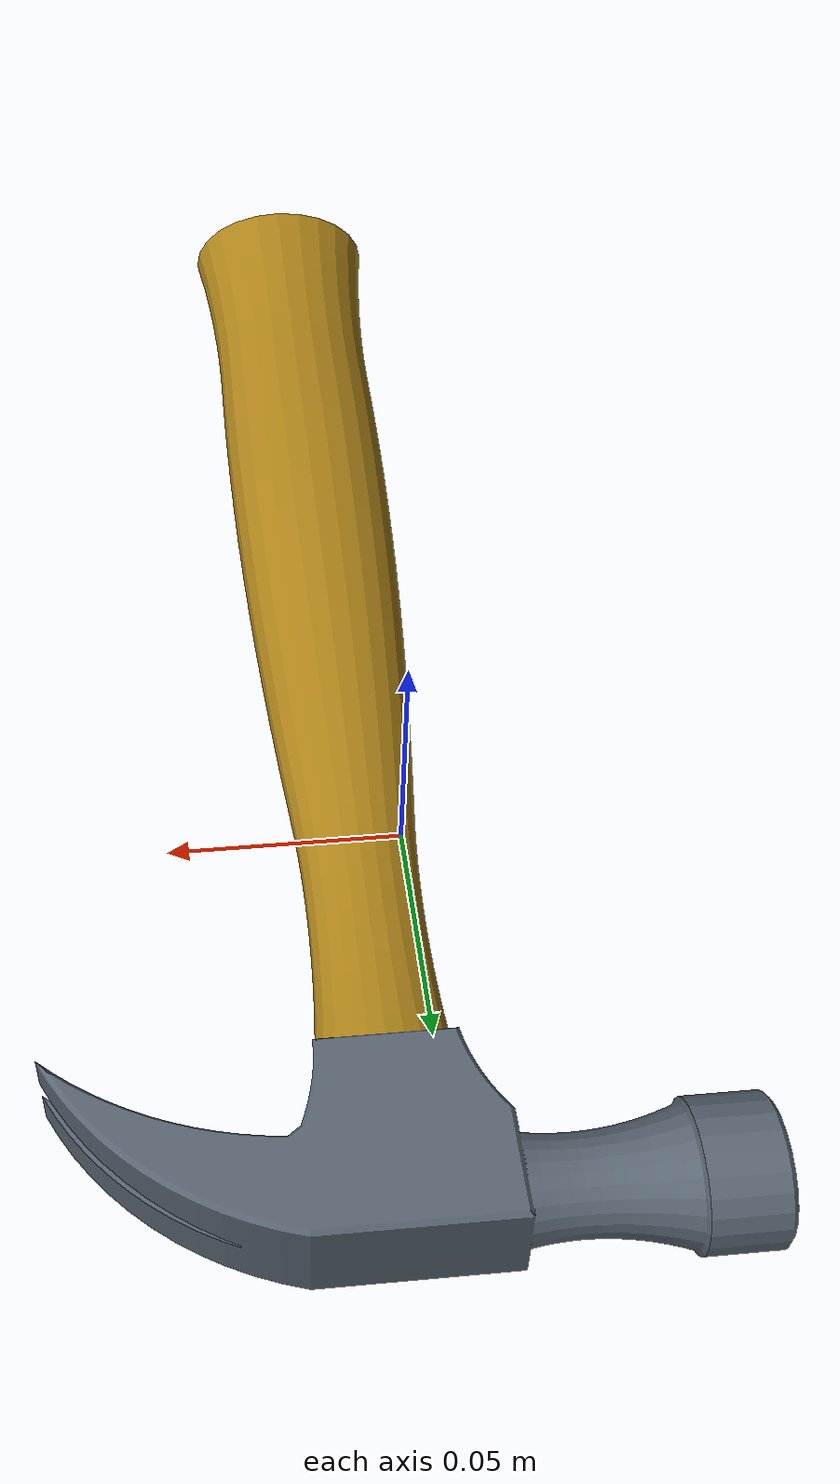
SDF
<?xml version="1.0" ?>
<sdf version="1.5">
    <model name="hammer">
        <link name="link">
          <inertial>
            <pose>0 0 0 0 0 0</pose>
            <mass>1.0</mass>
            <inertia>
              <ixx>0.06</ixx>  <ixy>0.0</ixy>
              <ixz>0.0</ixz>
              <iyy>0.003</iyy>
              <iyz>0.0</iyz>
              <izz>0.06</izz>
            </inertia>
          </inertial>

            <collision name="collision">
                <geometry>
                    <mesh>
                        <uri>model://hammer/meshes/hammer.dae</uri>
                    </mesh>
                </geometry>
                <surface>
                  <contact>
                    <ode>
                      <min_depth>0.001</min_depth>
                      <max_vel>0.01</max_vel>
                    </ode>
                  </contact>
                  <friction>
                    <ode>
                      <mu>100.0</mu>
                      <mu2>100.0</mu2>
                    </ode>
                  </friction>
                </surface>
            </collision>
            <visual name="visual">
                <geometry>
                    <mesh>
                        <uri>model://hammer/meshes/hammer.dae</uri>
                    </mesh>
                </geometry>
            </visual>
        </link>
    </model>
</sdf>
